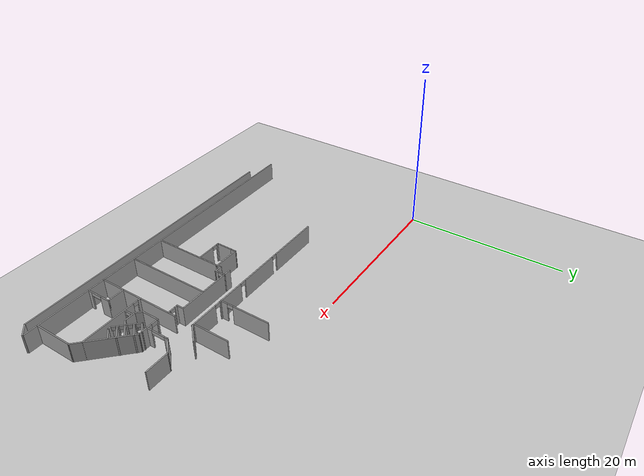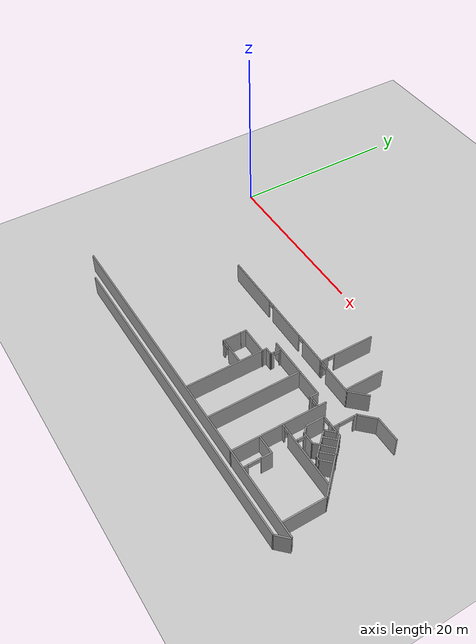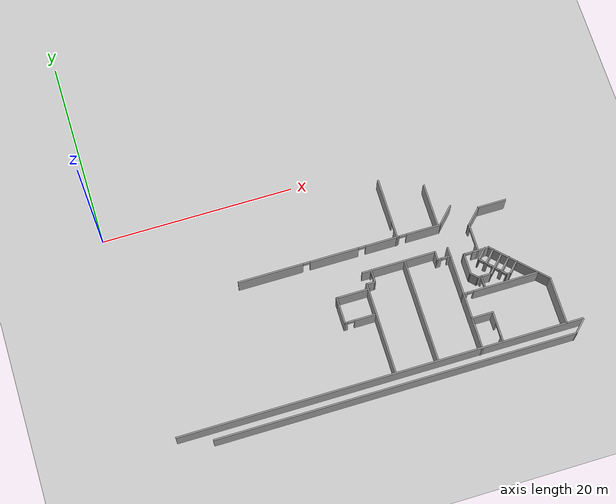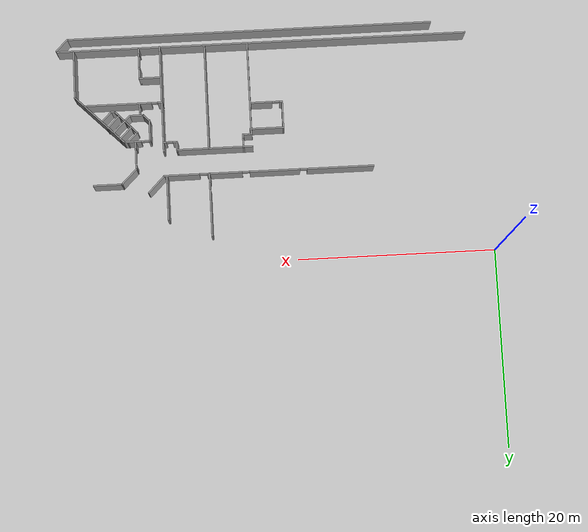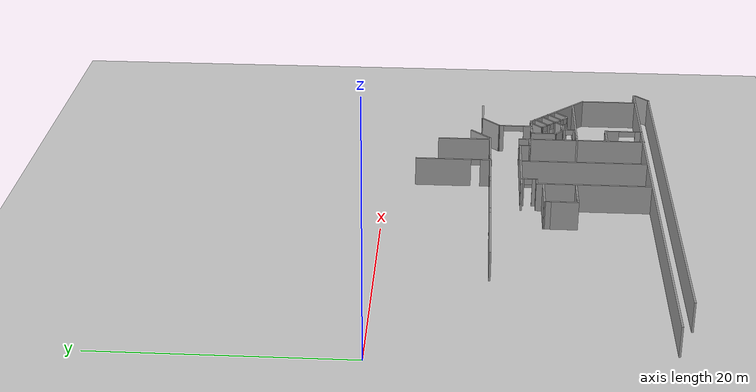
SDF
<sdf version="1.7">
 <world name="default">
  <model name="ground_plane">
   <static>1</static>
   <link name="link">
    <collision name="collision">
     <geometry><plane><normal>0 0 1</normal><size>100 100</size></plane></geometry>
     <surface>
      <contact><collide_bitmask>65535</collide_bitmask></contact>
      <friction><ode><mu>100</mu><mu2>50</mu2></ode></friction>
     </surface>
    </collision>
    <visual name="visual">
     <cast_shadows>0</cast_shadows>
     <geometry><plane><normal>0 0 1</normal><size>100 100</size></plane></geometry>
     <material>
      <script><uri>file://media/materials/scripts/gazebo.material</uri><name>Gazebo/Grey</name></script>
     </material>
    </visual>
   </link>
  </model>
  <model name="anglo_3_andar_metade">
   <pose>-4.28797 -1.08288 0 0 -0 0</pose>
   <link name="Wall_385">
    <collision name="Wall_385_Collision">
     <geometry><box><size>37.28 0.15 2.5</size></box></geometry>
     <pose>0 0 1.25 0 -0 0</pose>
    </collision>
    <visual name="Wall_385_Visual">
     <pose>0 0 1.25 0 -0 0</pose>
     <geometry><box><size>37.28 0.15 2.5</size></box></geometry>
     <material>
      <script><uri>file://media/materials/scripts/gazebo.material</uri><name>Gazebo/Grey</name></script>
      <ambient>1 1 1 1</ambient>
     </material>
     <meta><layer>0</layer></meta>
    </visual>
    <pose>28.1349 -22.4413 0 0 -0 0.000539</pose>
   </link>
   <link name="Wall_387">
    <collision name="Wall_387_Collision">
     <geometry><box><size>1.75 0.15 2.5</size></box></geometry>
     <pose>0 0 1.25 0 -0 0</pose>
    </collision>
    <visual name="Wall_387_Visual">
     <pose>0 0 1.25 0 -0 0</pose>
     <geometry><box><size>1.75 0.15 2.5</size></box></geometry>
     <material>
      <script><uri>file://media/materials/scripts/gazebo.material</uri><name>Gazebo/Grey</name></script>
      <ambient>1 1 1 1</ambient>
     </material>
     <meta><layer>0</layer></meta>
    </visual>
    <pose>47.2655 -21.8756 0 0 -0 0.785398</pose>
   </link>
   <link name="Wall_391">
    <collision name="Wall_391_Collision">
     <geometry><box><size>41.75 0.15 2.5</size></box></geometry>
     <pose>0 0 1.25 0 -0 0</pose>
    </collision>
    <visual name="Wall_391_Visual">
     <pose>0 0 1.25 0 -0 0</pose>
     <geometry><box><size>41.75 0.15 2.5</size></box></geometry>
     <material>
      <script><uri>file://media/materials/scripts/gazebo.material</uri><name>Gazebo/Grey</name></script>
      <ambient>1 1 1 1</ambient>
     </material>
     <meta><layer>0</layer></meta>
    </visual>
    <pose>26.9577 -21.1863 0 0 -0 0</pose>
   </link>
   <link name="Wall_393">
    <collision name="Wall_393_Collision">
     <geometry><box><size>5 0.15 2.5</size></box></geometry>
     <pose>0 0 1.25 0 -0 0</pose>
    </collision>
    <visual name="Wall_393_Visual">
     <pose>0 0 1.25 0 -0 0</pose>
     <geometry><box><size>5 0.15 2.5</size></box></geometry>
     <material>
      <script><uri>file://media/materials/scripts/gazebo.material</uri><name>Gazebo/Grey</name></script>
      <ambient>1 1 1 1</ambient>
     </material>
     <meta><layer>0</layer></meta>
    </visual>
    <pose>46.1077 -18.7513 0 0 -0 -1.5708</pose>
   </link>
   <link name="Wall_412">
    <collision name="Wall_412_Collision">
     <geometry><box><size>0.75 0.15 2.5</size></box></geometry>
     <pose>0 0 1.25 0 -0 0</pose>
    </collision>
    <visual name="Wall_412_Visual">
     <pose>0 0 1.25 0 -0 0</pose>
     <geometry><box><size>0.75 0.15 2.5</size></box></geometry>
     <material>
      <script><uri>file://media/materials/scripts/gazebo.material</uri><name>Gazebo/Grey</name></script>
      <ambient>1 1 1 1</ambient>
     </material>
     <meta><layer>0</layer></meta>
    </visual>
    <pose>25.1227 -12.4963 0 0 -0 1.58746</pose>
   </link>
   <link name="Wall_413">
    <collision name="Wall_413_Collision">
     <geometry><box><size>3.5 0.15 2.5</size></box></geometry>
     <pose>0 0 1.25 0 -0 0</pose>
    </collision>
    <visual name="Wall_413_Visual">
     <pose>0 0 1.25 0 -0 0</pose>
     <geometry><box><size>3.5 0.15 2.5</size></box></geometry>
     <material>
      <script><uri>file://media/materials/scripts/gazebo.material</uri><name>Gazebo/Grey</name></script>
      <ambient>1 1 1 1</ambient>
     </material>
     <meta><layer>0</layer></meta>
    </visual>
    <pose>26.7927 -12.1963 0 0 -0 0</pose>
   </link>
   <link name="Wall_415">
    <collision name="Wall_415_Collision">
     <geometry><box><size>2.25 0.15 2.5</size></box></geometry>
     <pose>0 0 1.25 0 -0 0</pose>
    </collision>
    <visual name="Wall_415_Visual">
     <pose>0 0 1.25 0 -0 0</pose>
     <geometry><box><size>2.25 0.15 2.5</size></box></geometry>
     <material>
      <script><uri>file://media/materials/scripts/gazebo.material</uri><name>Gazebo/Grey</name></script>
      <ambient>1 1 1 1</ambient>
     </material>
     <meta><layer>0</layer></meta>
    </visual>
    <pose>25.1177 -13.8463 0 0 -0 -1.5708</pose>
   </link>
   <link name="Wall_416">
    <pose>26.6727 -14.8963 0 0 -0 0</pose>
    <visual name="Wall_416_Visual_0">
     <pose>-1.435 0 1.25 0 -0 0</pose>
     <geometry><box><size>0.37 0.15 2.5</size></box></geometry>
     <material>
      <script><uri>file://media/materials/scripts/gazebo.material</uri><name>Gazebo/Grey</name></script>
      <ambient>1 1 1 1</ambient>
     </material>
     <meta><layer>0</layer></meta>
    </visual>
    <collision name="Wall_416_Collision_0">
     <geometry><box><size>0.37 0.15 2.5</size></box></geometry>
     <pose>-1.435 0 1.25 0 -0 0</pose>
    </collision>
    <visual name="Wall_416_Visual_1">
     <pose>0.54 0 1.25 0 -0 0</pose>
     <geometry><box><size>2.16 0.15 2.5</size></box></geometry>
     <material>
      <script><uri>file://media/materials/scripts/gazebo.material</uri><name>Gazebo/Grey</name></script>
      <ambient>1 1 1 1</ambient>
     </material>
     <meta><layer>0</layer></meta>
    </visual>
    <collision name="Wall_416_Collision_1">
     <geometry><box><size>2.16 0.15 2.5</size></box></geometry>
     <pose>0.54 0 1.25 0 -0 0</pose>
    </collision>
    <visual name="Wall_416_Visual_2">
     <pose>-0.895 0 2.25 0 -0 0</pose>
     <geometry><box><size>0.71 0.15 0.5</size></box></geometry>
     <material>
      <script><uri>file://media/materials/scripts/gazebo.material</uri><name>Gazebo/Grey</name></script>
      <ambient>1 1 1 1</ambient>
     </material>
     <meta><layer>0</layer></meta>
    </visual>
    <collision name="Wall_416_Collision_2">
     <geometry><box><size>0.71 0.15 0.5</size></box></geometry>
     <pose>-0.895 0 2.25 0 -0 0</pose>
    </collision>
   </link>
   <link name="Wall_418">
    <collision name="Wall_418_Collision">
     <geometry><box><size>9.53 0.15 2.5</size></box></geometry>
     <pose>0 0 1.25 0 -0 0</pose>
    </collision>
    <visual name="Wall_418_Visual">
     <pose>0 0 1.25 0 -0 0</pose>
     <geometry><box><size>9.53 0.15 2.5</size></box></geometry>
     <material>
      <script><uri>file://media/materials/scripts/gazebo.material</uri><name>Gazebo/Grey</name></script>
      <ambient>1 1 1 1</ambient>
     </material>
     <meta><layer>0</layer></meta>
    </visual>
    <pose>28.3977 -16.3663 0 0 -0 -1.5708</pose>
   </link>
   <link name="Wall_420">
    <collision name="Wall_420_Collision">
     <geometry><box><size>1 0.15 2.5</size></box></geometry>
     <pose>0 0 1.25 0 -0 0</pose>
    </collision>
    <visual name="Wall_420_Visual">
     <pose>0 0 1.25 0 -0 0</pose>
     <geometry><box><size>1 0.15 2.5</size></box></geometry>
     <material>
      <script><uri>file://media/materials/scripts/gazebo.material</uri><name>Gazebo/Grey</name></script>
      <ambient>1 1 1 1</ambient>
     </material>
     <meta><layer>0</layer></meta>
    </visual>
    <pose>28.8327 -11.6663 0 0 -0 0</pose>
   </link>
   <link name="Wall_421">
    <pose>29.2527 -11.0313 0 0 -0 1.57867</pose>
    <visual name="Wall_421_Visual_0">
     <pose>-0.48019 0 1.25 0 -0 0</pose>
     <geometry><box><size>0.459659 0.15 2.5</size></box></geometry>
     <material>
      <script><uri>file://media/materials/scripts/gazebo.material</uri><name>Gazebo/Grey</name></script>
      <ambient>1 1 1 1</ambient>
     </material>
     <meta><layer>0</layer></meta>
    </visual>
    <collision name="Wall_421_Collision_0">
     <geometry><box><size>0.459659 0.15 2.5</size></box></geometry>
     <pose>-0.48019 0 1.25 0 -0 0</pose>
    </collision>
    <visual name="Wall_421_Visual_1">
     <pose>0.555148 0 1.25 0 -0 0</pose>
     <geometry><box><size>0.309743 0.15 2.5</size></box></geometry>
     <material>
      <script><uri>file://media/materials/scripts/gazebo.material</uri><name>Gazebo/Grey</name></script>
      <ambient>1 1 1 1</ambient>
     </material>
     <meta><layer>0</layer></meta>
    </visual>
    <collision name="Wall_421_Collision_1">
     <geometry><box><size>0.309743 0.15 2.5</size></box></geometry>
     <pose>0.555148 0 1.25 0 -0 0</pose>
    </collision>
    <visual name="Wall_421_Visual_2">
     <pose>0.074958 0 2.25 0 -0 0</pose>
     <geometry><box><size>0.650638 0.15 0.5</size></box></geometry>
     <material>
      <script><uri>file://media/materials/scripts/gazebo.material</uri><name>Gazebo/Grey</name></script>
      <ambient>1 1 1 1</ambient>
     </material>
     <meta><layer>0</layer></meta>
    </visual>
    <collision name="Wall_421_Collision_2">
     <geometry><box><size>0.650638 0.15 0.5</size></box></geometry>
     <pose>0.074958 0 2.25 0 -0 0</pose>
    </collision>
   </link>
   <link name="Wall_423">
    <collision name="Wall_423_Collision">
     <geometry><box><size>7.75 0.15 2.5</size></box></geometry>
     <pose>0 0 1.25 0 -0 0</pose>
    </collision>
    <visual name="Wall_423_Visual">
     <pose>0 0 1.25 0 -0 0</pose>
     <geometry><box><size>7.75 0.15 2.5</size></box></geometry>
     <material>
      <script><uri>file://media/materials/scripts/gazebo.material</uri><name>Gazebo/Grey</name></script>
      <ambient>1 1 1 1</ambient>
     </material>
     <meta><layer>0</layer></meta>
    </visual>
    <pose>32.1677 -10.4063 0 0 -0 0</pose>
   </link>
   <link name="Wall_425">
    <collision name="Wall_425_Collision">
     <geometry><box><size>10.75 0.15 2.5</size></box></geometry>
     <pose>0 0 1.25 0 -0 0</pose>
    </collision>
    <visual name="Wall_425_Visual">
     <pose>0 0 1.25 0 -0 0</pose>
     <geometry><box><size>10.75 0.15 2.5</size></box></geometry>
     <material>
      <script><uri>file://media/materials/scripts/gazebo.material</uri><name>Gazebo/Grey</name></script>
      <ambient>1 1 1 1</ambient>
     </material>
     <meta><layer>0</layer></meta>
    </visual>
    <pose>32.7677 -15.7363 0 0 -0 -1.5708</pose>
   </link>
   <link name="Wall_427">
    <collision name="Wall_427_Collision">
     <geometry><box><size>1 0.15 2.5</size></box></geometry>
     <pose>0 0 1.25 0 -0 0</pose>
    </collision>
    <visual name="Wall_427_Visual">
     <pose>0 0 1.25 0 -0 0</pose>
     <geometry><box><size>1 0.15 2.5</size></box></geometry>
     <material>
      <script><uri>file://media/materials/scripts/gazebo.material</uri><name>Gazebo/Grey</name></script>
      <ambient>1 1 1 1</ambient>
     </material>
     <meta><layer>0</layer></meta>
    </visual>
    <pose>35.9677 -10.8313 0 0 -0 -1.5708</pose>
   </link>
   <link name="Wall_428">
    <pose>36.6427 -11.2563 0 0 -0 0</pose>
    <visual name="Wall_428_Visual_0">
     <pose>-0.514999 0 1.25 0 -0 0</pose>
     <geometry><box><size>0.470002 0.15 2.5</size></box></geometry>
     <material>
      <script><uri>file://media/materials/scripts/gazebo.material</uri><name>Gazebo/Grey</name></script>
      <ambient>1 1 1 1</ambient>
     </material>
     <meta><layer>0</layer></meta>
    </visual>
    <collision name="Wall_428_Collision_0">
     <geometry><box><size>0.470002 0.15 2.5</size></box></geometry>
     <pose>-0.514999 0 1.25 0 -0 0</pose>
    </collision>
    <visual name="Wall_428_Visual_1">
     <pose>0.560001 0 1.25 0 -0 0</pose>
     <geometry><box><size>0.379998 0.15 2.5</size></box></geometry>
     <material>
      <script><uri>file://media/materials/scripts/gazebo.material</uri><name>Gazebo/Grey</name></script>
      <ambient>1 1 1 1</ambient>
     </material>
     <meta><layer>0</layer></meta>
    </visual>
    <collision name="Wall_428_Collision_1">
     <geometry><box><size>0.379998 0.15 2.5</size></box></geometry>
     <pose>0.560001 0 1.25 0 -0 0</pose>
    </collision>
    <visual name="Wall_428_Visual_2">
     <pose>0.045002 0 2.25 0 -0 0</pose>
     <geometry><box><size>0.65 0.15 0.5</size></box></geometry>
     <material>
      <script><uri>file://media/materials/scripts/gazebo.material</uri><name>Gazebo/Grey</name></script>
      <ambient>1 1 1 1</ambient>
     </material>
     <meta><layer>0</layer></meta>
    </visual>
    <collision name="Wall_428_Collision_2">
     <geometry><box><size>0.65 0.15 0.5</size></box></geometry>
     <pose>0.045002 0 2.25 0 -0 0</pose>
    </collision>
   </link>
   <link name="Wall_430">
    <collision name="Wall_430_Collision">
     <geometry><box><size>11 0.15 2.5</size></box></geometry>
     <pose>0 0 1.25 0 -0 0</pose>
    </collision>
    <visual name="Wall_430_Visual">
     <pose>0 0 1.25 0 -0 0</pose>
     <geometry><box><size>11 0.15 2.5</size></box></geometry>
     <material>
      <script><uri>file://media/materials/scripts/gazebo.material</uri><name>Gazebo/Grey</name></script>
      <ambient>1 1 1 1</ambient>
     </material>
     <meta><layer>0</layer></meta>
    </visual>
    <pose>37.3177 -15.8113 0 0 -0 -1.5708</pose>
   </link>
   <link name="Wall_432">
    <pose>41.2327 -15.4063 0 0 -0 0</pose>
    <visual name="Wall_432_Visual_0">
     <pose>-3.75 0 1.25 0 -0 0</pose>
     <geometry><box><size>0.5 0.15 2.5</size></box></geometry>
     <material>
      <script><uri>file://media/materials/scripts/gazebo.material</uri><name>Gazebo/Grey</name></script>
      <ambient>1 1 1 1</ambient>
     </material>
     <meta><layer>0</layer></meta>
    </visual>
    <collision name="Wall_432_Collision_0">
     <geometry><box><size>0.5 0.15 2.5</size></box></geometry>
     <pose>-3.75 0 1.25 0 -0 0</pose>
    </collision>
    <visual name="Wall_432_Visual_1">
     <pose>0.57 0 1.25 0 -0 0</pose>
     <geometry><box><size>6.86 0.15 2.5</size></box></geometry>
     <material>
      <script><uri>file://media/materials/scripts/gazebo.material</uri><name>Gazebo/Grey</name></script>
      <ambient>1 1 1 1</ambient>
     </material>
     <meta><layer>0</layer></meta>
    </visual>
    <collision name="Wall_432_Collision_1">
     <geometry><box><size>6.86 0.15 2.5</size></box></geometry>
     <pose>0.57 0 1.25 0 -0 0</pose>
    </collision>
    <visual name="Wall_432_Visual_2">
     <pose>-3.18 0 2.25 0 -0 0</pose>
     <geometry><box><size>0.64 0.15 0.5</size></box></geometry>
     <material>
      <script><uri>file://media/materials/scripts/gazebo.material</uri><name>Gazebo/Grey</name></script>
      <ambient>1 1 1 1</ambient>
     </material>
     <meta><layer>0</layer></meta>
    </visual>
    <collision name="Wall_432_Collision_2">
     <geometry><box><size>0.64 0.15 0.5</size></box></geometry>
     <pose>-3.18 0 2.25 0 -0 0</pose>
    </collision>
   </link>
   <link name="Wall_434">
    <collision name="Wall_434_Collision">
     <geometry><box><size>2.25 0.15 2.5</size></box></geometry>
     <pose>0 0 1.25 0 -0 0</pose>
    </collision>
    <visual name="Wall_434_Visual">
     <pose>0 0 1.25 0 -0 0</pose>
     <geometry><box><size>2.25 0.15 2.5</size></box></geometry>
     <material>
      <script><uri>file://media/materials/scripts/gazebo.material</uri><name>Gazebo/Grey</name></script>
      <ambient>1 1 1 1</ambient>
     </material>
     <meta><layer>0</layer></meta>
    </visual>
    <pose>38.4277 -18.0263 0 0 -0 0</pose>
   </link>
   <link name="Wall_435">
    <pose>39.4777 -19.5763 0 0 -0 -1.5708</pose>
    <visual name="Wall_435_Visual_0">
     <pose>-0.9925 0 1.25 0 -0 0</pose>
     <geometry><box><size>1.265 0.15 2.5</size></box></geometry>
     <material>
      <script><uri>file://media/materials/scripts/gazebo.material</uri><name>Gazebo/Grey</name></script>
      <ambient>1 1 1 1</ambient>
     </material>
     <meta><layer>0</layer></meta>
    </visual>
    <collision name="Wall_435_Collision_0">
     <geometry><box><size>1.265 0.15 2.5</size></box></geometry>
     <pose>-0.9925 0 1.25 0 -0 0</pose>
    </collision>
    <visual name="Wall_435_Visual_1">
     <pose>1.3375 0 1.25 0 -0 0</pose>
     <geometry><box><size>0.575001 0.15 2.5</size></box></geometry>
     <material>
      <script><uri>file://media/materials/scripts/gazebo.material</uri><name>Gazebo/Grey</name></script>
      <ambient>1 1 1 1</ambient>
     </material>
     <meta><layer>0</layer></meta>
    </visual>
    <collision name="Wall_435_Collision_1">
     <geometry><box><size>0.575001 0.15 2.5</size></box></geometry>
     <pose>1.3375 0 1.25 0 -0 0</pose>
    </collision>
    <visual name="Wall_435_Visual_2">
     <pose>0.344999 0 2.25 0 -0 0</pose>
     <geometry><box><size>1.41 0.15 0.5</size></box></geometry>
     <material>
      <script><uri>file://media/materials/scripts/gazebo.material</uri><name>Gazebo/Grey</name></script>
      <ambient>1 1 1 1</ambient>
     </material>
     <meta><layer>0</layer></meta>
    </visual>
    <collision name="Wall_435_Collision_2">
     <geometry><box><size>1.41 0.15 0.5</size></box></geometry>
     <pose>0.344999 0 2.25 0 -0 0</pose>
    </collision>
   </link>
   <link name="Wall_437">
    <collision name="Wall_437_Collision">
     <geometry><box><size>7 0.15 2.5</size></box></geometry>
     <pose>0 0 1.25 0 -0 0</pose>
    </collision>
    <visual name="Wall_437_Visual">
     <pose>0 0 1.25 0 -0 0</pose>
     <geometry><box><size>7 0.15 2.5</size></box></geometry>
     <material>
      <script><uri>file://media/materials/scripts/gazebo.material</uri><name>Gazebo/Grey</name></script>
      <ambient>1 1 1 1</ambient>
     </material>
     <meta><layer>0</layer></meta>
    </visual>
    <pose>43.6859 -13.9045 0 0 -0 2.35619</pose>
   </link>
   <link name="Wall_439">
    <pose>39.964 -11.4826 0 0 -0 3.14159</pose>
    <visual name="Wall_439_Visual_0">
     <pose>-0.48684 0 1.25 0 -0 0</pose>
     <geometry><box><size>1.77632 0.15 2.5</size></box></geometry>
     <material>
      <script><uri>file://media/materials/scripts/gazebo.material</uri><name>Gazebo/Grey</name></script>
      <ambient>1 1 1 1</ambient>
     </material>
     <meta><layer>0</layer></meta>
    </visual>
    <collision name="Wall_439_Collision_0">
     <geometry><box><size>1.77632 0.15 2.5</size></box></geometry>
     <pose>-0.48684 0 1.25 0 -0 0</pose>
    </collision>
    <visual name="Wall_439_Visual_1">
     <pose>1.28816 0 1.25 0 -0 0</pose>
     <geometry><box><size>0.173681 0.15 2.5</size></box></geometry>
     <material>
      <script><uri>file://media/materials/scripts/gazebo.material</uri><name>Gazebo/Grey</name></script>
      <ambient>1 1 1 1</ambient>
     </material>
     <meta><layer>0</layer></meta>
    </visual>
    <collision name="Wall_439_Collision_1">
     <geometry><box><size>0.173681 0.15 2.5</size></box></geometry>
     <pose>1.28816 0 1.25 0 -0 0</pose>
    </collision>
    <visual name="Wall_439_Visual_2">
     <pose>0.801319 0 2.25 0 -0 0</pose>
     <geometry><box><size>0.8 0.15 0.5</size></box></geometry>
     <material>
      <script><uri>file://media/materials/scripts/gazebo.material</uri><name>Gazebo/Grey</name></script>
      <ambient>1 1 1 1</ambient>
     </material>
     <meta><layer>0</layer></meta>
    </visual>
    <collision name="Wall_439_Collision_2">
     <geometry><box><size>0.8 0.15 0.5</size></box></geometry>
     <pose>0.801319 0 2.25 0 -0 0</pose>
    </collision>
   </link>
   <link name="Wall_441">
    <collision name="Wall_441_Collision">
     <geometry><box><size>2.25 0.15 2.5</size></box></geometry>
     <pose>0 0 1.25 0 -0 0</pose>
    </collision>
    <visual name="Wall_441_Visual">
     <pose>0 0 1.25 0 -0 0</pose>
     <geometry><box><size>2.25 0.15 2.5</size></box></geometry>
     <material>
      <script><uri>file://media/materials/scripts/gazebo.material</uri><name>Gazebo/Grey</name></script>
      <ambient>1 1 1 1</ambient>
     </material>
     <meta><layer>0</layer></meta>
    </visual>
    <pose>38.664 -12.5326 0 0 -0 -1.5708</pose>
   </link>
   <link name="Wall_442">
    <collision name="Wall_442_Collision">
     <geometry><box><size>1 0.15 2.5</size></box></geometry>
     <pose>0 0 1.25 0 -0 0</pose>
    </collision>
    <visual name="Wall_442_Visual">
     <pose>0 0 1.25 0 -0 0</pose>
     <geometry><box><size>1 0.15 2.5</size></box></geometry>
     <material>
      <script><uri>file://media/materials/scripts/gazebo.material</uri><name>Gazebo/Grey</name></script>
      <ambient>1 1 1 1</ambient>
     </material>
     <meta><layer>0</layer></meta>
    </visual>
    <pose>38.9645 -13.8832 0 0 -0 -0.785398</pose>
   </link>
   <link name="Wall_443">
    <collision name="Wall_443_Collision">
     <geometry><box><size>1.5 0.15 2.5</size></box></geometry>
     <pose>0 0 1.25 0 -0 0</pose>
    </collision>
    <visual name="Wall_443_Visual">
     <pose>0 0 1.25 0 -0 0</pose>
     <geometry><box><size>1.5 0.15 2.5</size></box></geometry>
     <material>
      <script><uri>file://media/materials/scripts/gazebo.material</uri><name>Gazebo/Grey</name></script>
      <ambient>1 1 1 1</ambient>
     </material>
     <meta><layer>0</layer></meta>
    </visual>
    <pose>39.9401 -14.1837 0 0 -0 0</pose>
   </link>
   <link name="Wall_444">
    <collision name="Wall_444_Collision">
     <geometry><box><size>2.5 0.15 2.5</size></box></geometry>
     <pose>0 0 1.25 0 -0 0</pose>
    </collision>
    <visual name="Wall_444_Visual">
     <pose>0 0 1.25 0 -0 0</pose>
     <geometry><box><size>2.5 0.15 2.5</size></box></geometry>
     <material>
      <script><uri>file://media/materials/scripts/gazebo.material</uri><name>Gazebo/Grey</name></script>
      <ambient>1 1 1 1</ambient>
     </material>
     <meta><layer>0</layer></meta>
    </visual>
    <pose>41.4459 -13.3528 0 0 -0 0.785398</pose>
   </link>
   <link name="Wall_447">
    <pose>39.5777 -14.7463 0 0 -0 -1.5708</pose>
    <visual name="Wall_447_Visual_0">
     <pose>-0.445 0 1.25 0 -0 0</pose>
     <geometry><box><size>0.36 0.15 2.5</size></box></geometry>
     <material>
      <script><uri>file://media/materials/scripts/gazebo.material</uri><name>Gazebo/Grey</name></script>
      <ambient>1 1 1 1</ambient>
     </material>
     <meta><layer>0</layer></meta>
    </visual>
    <collision name="Wall_447_Collision_0">
     <geometry><box><size>0.36 0.15 2.5</size></box></geometry>
     <pose>-0.445 0 1.25 0 -0 0</pose>
    </collision>
    <visual name="Wall_447_Visual_1">
     <pose>0.52 0 1.25 0 -0 0</pose>
     <geometry><box><size>0.21 0.15 2.5</size></box></geometry>
     <material>
      <script><uri>file://media/materials/scripts/gazebo.material</uri><name>Gazebo/Grey</name></script>
      <ambient>1 1 1 1</ambient>
     </material>
     <meta><layer>0</layer></meta>
    </visual>
    <collision name="Wall_447_Collision_1">
     <geometry><box><size>0.21 0.15 2.5</size></box></geometry>
     <pose>0.52 0 1.25 0 -0 0</pose>
    </collision>
    <visual name="Wall_447_Visual_2">
     <pose>0.075 0 2.25 0 -0 0</pose>
     <geometry><box><size>0.68 0.15 0.5</size></box></geometry>
     <material>
      <script><uri>file://media/materials/scripts/gazebo.material</uri><name>Gazebo/Grey</name></script>
      <ambient>1 1 1 1</ambient>
     </material>
     <meta><layer>0</layer></meta>
    </visual>
    <collision name="Wall_447_Collision_2">
     <geometry><box><size>0.68 0.15 0.5</size></box></geometry>
     <pose>0.075 0 2.25 0 -0 0</pose>
    </collision>
   </link>
   <link name="Wall_449">
    <collision name="Wall_449_Collision">
     <geometry><box><size>1.5 0.15 2.5</size></box></geometry>
     <pose>0 0 1.25 0 -0 0</pose>
    </collision>
    <visual name="Wall_449_Visual">
     <pose>0 0 1.25 0 -0 0</pose>
     <geometry><box><size>1.5 0.15 2.5</size></box></geometry>
     <material>
      <script><uri>file://media/materials/scripts/gazebo.material</uri><name>Gazebo/Grey</name></script>
      <ambient>1 1 1 1</ambient>
     </material>
     <meta><layer>0</layer></meta>
    </visual>
    <pose>40.4104 -11.9236 0 0 -0 -2.35619</pose>
   </link>
   <link name="Wall_450">
    <pose>41.0282 -13.5372 0 0 -0 -0.803885</pose>
    <visual name="Wall_450_Visual_0">
     <pose>-1.57581 0 1.25 0 -0 0</pose>
     <geometry><box><size>0.154535 0.15 2.5</size></box></geometry>
     <material>
      <script><uri>file://media/materials/scripts/gazebo.material</uri><name>Gazebo/Grey</name></script>
      <ambient>1 1 1 1</ambient>
     </material>
     <meta><layer>0</layer></meta>
    </visual>
    <collision name="Wall_450_Collision_0">
     <geometry><box><size>0.154535 0.15 2.5</size></box></geometry>
     <pose>-1.57581 0 1.25 0 -0 0</pose>
    </collision>
    <visual name="Wall_450_Visual_1">
     <pose>-0.77383 0 1.25 0 -0 0</pose>
     <geometry><box><size>0.356538 0.15 2.5</size></box></geometry>
     <material>
      <script><uri>file://media/materials/scripts/gazebo.material</uri><name>Gazebo/Grey</name></script>
      <ambient>1 1 1 1</ambient>
     </material>
     <meta><layer>0</layer></meta>
    </visual>
    <collision name="Wall_450_Collision_1">
     <geometry><box><size>0.356538 0.15 2.5</size></box></geometry>
     <pose>-0.77383 0 1.25 0 -0 0</pose>
    </collision>
    <visual name="Wall_450_Visual_2">
     <pose>0.072394 0 1.25 0 -0 0</pose>
     <geometry><box><size>0.356153 0.15 2.5</size></box></geometry>
     <material>
      <script><uri>file://media/materials/scripts/gazebo.material</uri><name>Gazebo/Grey</name></script>
      <ambient>1 1 1 1</ambient>
     </material>
     <meta><layer>0</layer></meta>
    </visual>
    <collision name="Wall_450_Collision_2">
     <geometry><box><size>0.356153 0.15 2.5</size></box></geometry>
     <pose>0.072394 0 1.25 0 -0 0</pose>
    </collision>
    <visual name="Wall_450_Visual_3">
     <pose>0.930639 0 1.25 0 -0 0</pose>
     <geometry><box><size>0.352297 0.15 2.5</size></box></geometry>
     <material>
      <script><uri>file://media/materials/scripts/gazebo.material</uri><name>Gazebo/Grey</name></script>
      <ambient>1 1 1 1</ambient>
     </material>
     <meta><layer>0</layer></meta>
    </visual>
    <collision name="Wall_450_Collision_3">
     <geometry><box><size>0.352297 0.15 2.5</size></box></geometry>
     <pose>0.930639 0 1.25 0 -0 0</pose>
    </collision>
    <visual name="Wall_450_Visual_4">
     <pose>1.61073 0 1.25 0 -0 0</pose>
     <geometry><box><size>0.084699 0.15 2.5</size></box></geometry>
     <material>
      <script><uri>file://media/materials/scripts/gazebo.material</uri><name>Gazebo/Grey</name></script>
      <ambient>1 1 1 1</ambient>
     </material>
     <meta><layer>0</layer></meta>
    </visual>
    <collision name="Wall_450_Collision_4">
     <geometry><box><size>0.084699 0.15 2.5</size></box></geometry>
     <pose>1.61073 0 1.25 0 -0 0</pose>
    </collision>
    <visual name="Wall_450_Visual_5">
     <pose>-1.22532 0 2.25 0 -0 0</pose>
     <geometry><box><size>0.546447 0.15 0.5</size></box></geometry>
     <material>
      <script><uri>file://media/materials/scripts/gazebo.material</uri><name>Gazebo/Grey</name></script>
      <ambient>1 1 1 1</ambient>
     </material>
     <meta><layer>0</layer></meta>
    </visual>
    <collision name="Wall_450_Collision_5">
     <geometry><box><size>0.546447 0.15 0.5</size></box></geometry>
     <pose>-1.22532 0 2.25 0 -0 0</pose>
    </collision>
    <visual name="Wall_450_Visual_6">
     <pose>-0.350622 0 2.25 0 -0 0</pose>
     <geometry><box><size>0.489878 0.15 0.5</size></box></geometry>
     <material>
      <script><uri>file://media/materials/scripts/gazebo.material</uri><name>Gazebo/Grey</name></script>
      <ambient>1 1 1 1</ambient>
     </material>
     <meta><layer>0</layer></meta>
    </visual>
    <collision name="Wall_450_Collision_6">
     <geometry><box><size>0.489878 0.15 0.5</size></box></geometry>
     <pose>-0.350622 0 2.25 0 -0 0</pose>
    </collision>
    <visual name="Wall_450_Visual_7">
     <pose>0.50248 0 2.25 0 -0 0</pose>
     <geometry><box><size>0.50402 0.15 0.5</size></box></geometry>
     <material>
      <script><uri>file://media/materials/scripts/gazebo.material</uri><name>Gazebo/Grey</name></script>
      <ambient>1 1 1 1</ambient>
     </material>
     <meta><layer>0</layer></meta>
    </visual>
    <collision name="Wall_450_Collision_7">
     <geometry><box><size>0.50402 0.15 0.5</size></box></geometry>
     <pose>0.50248 0 2.25 0 -0 0</pose>
    </collision>
    <visual name="Wall_450_Visual_8">
     <pose>1.33758 0 2.25 0 -0 0</pose>
     <geometry><box><size>0.461594 0.15 0.5</size></box></geometry>
     <material>
      <script><uri>file://media/materials/scripts/gazebo.material</uri><name>Gazebo/Grey</name></script>
      <ambient>1 1 1 1</ambient>
     </material>
     <meta><layer>0</layer></meta>
    </visual>
    <collision name="Wall_450_Collision_8">
     <geometry><box><size>0.461594 0.15 0.5</size></box></geometry>
     <pose>1.33758 0 2.25 0 -0 0</pose>
    </collision>
   </link>
   <link name="Wall_451">
    <collision name="Wall_451_Collision">
     <geometry><box><size>0.5 0.15 2.5</size></box></geometry>
     <pose>0 0 1.25 0 -0 0</pose>
    </collision>
    <visual name="Wall_451_Visual">
     <pose>0 0 1.25 0 -0 0</pose>
     <geometry><box><size>0.5 0.15 2.5</size></box></geometry>
     <material>
      <script><uri>file://media/materials/scripts/gazebo.material</uri><name>Gazebo/Grey</name></script>
      <ambient>1 1 1 1</ambient>
     </material>
     <meta><layer>0</layer></meta>
    </visual>
    <pose>42.2982 -14.6735 0 0 -0 0</pose>
   </link>
   <link name="Wall_452">
    <collision name="Wall_452_Collision">
     <geometry><box><size>1.47172 0.15 2.5</size></box></geometry>
     <pose>0 0 1.25 0 -0 0</pose>
    </collision>
    <visual name="Wall_452_Visual">
     <pose>0 0 1.25 0 -0 0</pose>
     <geometry><box><size>1.47172 0.15 2.5</size></box></geometry>
     <material>
      <script><uri>file://media/materials/scripts/gazebo.material</uri><name>Gazebo/Grey</name></script>
      <ambient>1 1 1 1</ambient>
     </material>
     <meta><layer>0</layer></meta>
    </visual>
    <pose>42.9505 -14.1962 0 0 -0 0.785398</pose>
   </link>
   <link name="Wall_454">
    <collision name="Wall_454_Collision">
     <geometry><box><size>1.75 0.15 2.5</size></box></geometry>
     <pose>0 0 1.25 0 -0 0</pose>
    </collision>
    <visual name="Wall_454_Visual">
     <pose>0 0 1.25 0 -0 0</pose>
     <geometry><box><size>1.75 0.15 2.5</size></box></geometry>
     <material>
      <script><uri>file://media/materials/scripts/gazebo.material</uri><name>Gazebo/Grey</name></script>
      <ambient>1 1 1 1</ambient>
     </material>
     <meta><layer>0</layer></meta>
    </visual>
    <pose>42.3234 -13.6006 0 0 -0 0.785398</pose>
   </link>
   <link name="Wall_456">
    <collision name="Wall_456_Collision">
     <geometry><box><size>1.75 0.15 2.5</size></box></geometry>
     <pose>0 0 1.25 0 -0 0</pose>
    </collision>
    <visual name="Wall_456_Visual">
     <pose>0 0 1.25 0 -0 0</pose>
     <geometry><box><size>1.75 0.15 2.5</size></box></geometry>
     <material>
      <script><uri>file://media/materials/scripts/gazebo.material</uri><name>Gazebo/Grey</name></script>
      <ambient>1 1 1 1</ambient>
     </material>
     <meta><layer>0</layer></meta>
    </visual>
    <pose>41.0834 -12.4006 0 0 -0 0.785398</pose>
   </link>
   <link name="Wall_458">
    <pose>40.1477 -10.0613 0 0 -0 1.5708</pose>
    <visual name="Wall_458_Visual_0">
     <pose>-1.1025 0 1.25 0 -0 0</pose>
     <geometry><box><size>0.795 0.15 2.5</size></box></geometry>
     <material>
      <script><uri>file://media/materials/scripts/gazebo.material</uri><name>Gazebo/Grey</name></script>
      <ambient>1 1 1 1</ambient>
     </material>
     <meta><layer>0</layer></meta>
    </visual>
    <collision name="Wall_458_Collision_0">
     <geometry><box><size>0.795 0.15 2.5</size></box></geometry>
     <pose>-1.1025 0 1.25 0 -0 0</pose>
    </collision>
    <visual name="Wall_458_Visual_1">
     <pose>1.2725 0 1.25 0 -0 0</pose>
     <geometry><box><size>0.455 0.15 2.5</size></box></geometry>
     <material>
      <script><uri>file://media/materials/scripts/gazebo.material</uri><name>Gazebo/Grey</name></script>
      <ambient>1 1 1 1</ambient>
     </material>
     <meta><layer>0</layer></meta>
    </visual>
    <collision name="Wall_458_Collision_1">
     <geometry><box><size>0.455 0.15 2.5</size></box></geometry>
     <pose>1.2725 0 1.25 0 -0 0</pose>
    </collision>
    <visual name="Wall_458_Visual_2">
     <pose>0.17 0 2.25 0 -0 0</pose>
     <geometry><box><size>1.75 0.15 0.5</size></box></geometry>
     <material>
      <script><uri>file://media/materials/scripts/gazebo.material</uri><name>Gazebo/Grey</name></script>
      <ambient>1 1 1 1</ambient>
     </material>
     <meta><layer>0</layer></meta>
    </visual>
    <collision name="Wall_458_Collision_2">
     <geometry><box><size>1.75 0.15 0.5</size></box></geometry>
     <pose>0.17 0 2.25 0 -0 0</pose>
    </collision>
   </link>
   <link name="Wall_460">
    <collision name="Wall_460_Collision">
     <geometry><box><size>2.26419 0.15 2.5</size></box></geometry>
     <pose>0 0 1.25 0 -0 0</pose>
    </collision>
    <visual name="Wall_460_Visual">
     <pose>0 0 1.25 0 -0 0</pose>
     <geometry><box><size>2.26419 0.15 2.5</size></box></geometry>
     <material>
      <script><uri>file://media/materials/scripts/gazebo.material</uri><name>Gazebo/Grey</name></script>
      <ambient>1 1 1 1</ambient>
     </material>
     <meta><layer>0</layer></meta>
    </visual>
    <pose>40.9002 -7.89386 0 0 -0 0.778709</pose>
   </link>
   <link name="Wall_470">
    <collision name="Wall_470_Collision">
     <geometry><box><size>3 0.15 2.5</size></box></geometry>
     <pose>0 0 1.25 0 -0 0</pose>
    </collision>
    <visual name="Wall_470_Visual">
     <pose>0 0 1.25 0 -0 0</pose>
     <geometry><box><size>3 0.15 2.5</size></box></geometry>
     <material>
      <script><uri>file://media/materials/scripts/gazebo.material</uri><name>Gazebo/Grey</name></script>
      <ambient>1 1 1 1</ambient>
     </material>
     <meta><layer>0</layer></meta>
    </visual>
    <pose>43.0676 -7.1514 0 0 -0 0</pose>
   </link>
   <link name="Wall_512">
    <collision name="Wall_512_Collision">
     <geometry><box><size>2.42232 0.15 2.5</size></box></geometry>
     <pose>0 0 1.25 0 -0 0</pose>
    </collision>
    <visual name="Wall_512_Visual">
     <pose>0 0 1.25 0 -0 0</pose>
     <geometry><box><size>2.42232 0.15 2.5</size></box></geometry>
     <material>
      <script><uri>file://media/materials/scripts/gazebo.material</uri><name>Gazebo/Grey</name></script>
      <ambient>1 1 1 1</ambient>
     </material>
     <meta><layer>0</layer></meta>
    </visual>
    <pose>38.1636 -6.98547 0 0 -0 0.794734</pose>
   </link>
   <link name="Wall_527">
    <pose>32.8094 -4.66962 0 0 -0 -1.5708</pose>
    <visual name="Wall_527_Visual_0">
     <pose>-0.87915 0 1.25 0 -0 0</pose>
     <geometry><box><size>4.7417 0.15 2.5</size></box></geometry>
     <material>
      <script><uri>file://media/materials/scripts/gazebo.material</uri><name>Gazebo/Grey</name></script>
      <ambient>1 1 1 1</ambient>
     </material>
     <meta><layer>0</layer></meta>
    </visual>
    <collision name="Wall_527_Collision_0">
     <geometry><box><size>4.7417 0.15 2.5</size></box></geometry>
     <pose>-0.87915 0 1.25 0 -0 0</pose>
    </collision>
    <visual name="Wall_527_Visual_1">
     <pose>2.76085 0 1.25 0 -0 0</pose>
     <geometry><box><size>0.978299 0.15 2.5</size></box></geometry>
     <material>
      <script><uri>file://media/materials/scripts/gazebo.material</uri><name>Gazebo/Grey</name></script>
      <ambient>1 1 1 1</ambient>
     </material>
     <meta><layer>0</layer></meta>
    </visual>
    <collision name="Wall_527_Collision_1">
     <geometry><box><size>0.978299 0.15 2.5</size></box></geometry>
     <pose>2.76085 0 1.25 0 -0 0</pose>
    </collision>
    <visual name="Wall_527_Visual_2">
     <pose>1.8817 0 2.25 0 -0 0</pose>
     <geometry><box><size>0.78 0.15 0.5</size></box></geometry>
     <material>
      <script><uri>file://media/materials/scripts/gazebo.material</uri><name>Gazebo/Grey</name></script>
      <ambient>1 1 1 1</ambient>
     </material>
     <meta><layer>0</layer></meta>
    </visual>
    <collision name="Wall_527_Collision_2">
     <geometry><box><size>0.78 0.15 0.5</size></box></geometry>
     <pose>1.8817 0 2.25 0 -0 0</pose>
    </collision>
   </link>
   <link name="Wall_530">
    <collision name="Wall_530_Collision">
     <geometry><box><size>4.5 0.15 2.5</size></box></geometry>
     <pose>0 0 1.25 0 -0 0</pose>
    </collision>
    <visual name="Wall_530_Visual">
     <pose>0 0 1.25 0 -0 0</pose>
     <geometry><box><size>4.5 0.15 2.5</size></box></geometry>
     <material>
      <script><uri>file://media/materials/scripts/gazebo.material</uri><name>Gazebo/Grey</name></script>
      <ambient>1 1 1 1</ambient>
     </material>
     <meta><layer>0</layer></meta>
    </visual>
    <pose>37.1077 -5.50132 0 0 -0 -1.5708</pose>
   </link>
   <link name="Wall_583">
    <pose>26.8077 -7.80632 0 0 -0 0</pose>
    <visual name="Wall_583_Visual_0">
     <pose>-7.2425 0 1.25 0 -0 0</pose>
     <geometry><box><size>6.765 0.15 2.5</size></box></geometry>
     <material>
      <script><uri>file://media/materials/scripts/gazebo.material</uri><name>Gazebo/Grey</name></script>
      <ambient>1 1 1 1</ambient>
     </material>
     <meta><layer>0</layer></meta>
    </visual>
    <collision name="Wall_583_Collision_0">
     <geometry><box><size>6.765 0.15 2.5</size></box></geometry>
     <pose>-7.2425 0 1.25 0 -0 0</pose>
    </collision>
    <visual name="Wall_583_Visual_1">
     <pose>-0.6025 0 1.25 0 -0 0</pose>
     <geometry><box><size>5.075 0.15 2.5</size></box></geometry>
     <material>
      <script><uri>file://media/materials/scripts/gazebo.material</uri><name>Gazebo/Grey</name></script>
      <ambient>1 1 1 1</ambient>
     </material>
     <meta><layer>0</layer></meta>
    </visual>
    <collision name="Wall_583_Collision_1">
     <geometry><box><size>5.075 0.15 2.5</size></box></geometry>
     <pose>-0.6025 0 1.25 0 -0 0</pose>
    </collision>
    <visual name="Wall_583_Visual_2">
     <pose>4.4625 0 1.25 0 -0 0</pose>
     <geometry><box><size>3.555 0.15 2.5</size></box></geometry>
     <material>
      <script><uri>file://media/materials/scripts/gazebo.material</uri><name>Gazebo/Grey</name></script>
      <ambient>1 1 1 1</ambient>
     </material>
     <meta><layer>0</layer></meta>
    </visual>
    <collision name="Wall_583_Collision_2">
     <geometry><box><size>3.555 0.15 2.5</size></box></geometry>
     <pose>4.4625 0 1.25 0 -0 0</pose>
    </collision>
    <visual name="Wall_583_Visual_3">
     <pose>8.8125 0 1.25 0 -0 0</pose>
     <geometry><box><size>3.625 0.15 2.5</size></box></geometry>
     <material>
      <script><uri>file://media/materials/scripts/gazebo.material</uri><name>Gazebo/Grey</name></script>
      <ambient>1 1 1 1</ambient>
     </material>
     <meta><layer>0</layer></meta>
    </visual>
    <collision name="Wall_583_Collision_3">
     <geometry><box><size>3.625 0.15 2.5</size></box></geometry>
     <pose>8.8125 0 1.25 0 -0 0</pose>
    </collision>
    <visual name="Wall_583_Visual_4">
     <pose>-3.5 0 2.25 0 -0 0</pose>
     <geometry><box><size>0.72 0.15 0.5</size></box></geometry>
     <material>
      <script><uri>file://media/materials/scripts/gazebo.material</uri><name>Gazebo/Grey</name></script>
      <ambient>1 1 1 1</ambient>
     </material>
     <meta><layer>0</layer></meta>
    </visual>
    <collision name="Wall_583_Collision_4">
     <geometry><box><size>0.72 0.15 0.5</size></box></geometry>
     <pose>-3.5 0 2.25 0 -0 0</pose>
    </collision>
    <visual name="Wall_583_Visual_5">
     <pose>2.31 0 2.25 0 -0 0</pose>
     <geometry><box><size>0.75 0.15 0.5</size></box></geometry>
     <material>
      <script><uri>file://media/materials/scripts/gazebo.material</uri><name>Gazebo/Grey</name></script>
      <ambient>1 1 1 1</ambient>
     </material>
     <meta><layer>0</layer></meta>
    </visual>
    <collision name="Wall_583_Collision_5">
     <geometry><box><size>0.75 0.15 0.5</size></box></geometry>
     <pose>2.31 0 2.25 0 -0 0</pose>
    </collision>
    <visual name="Wall_583_Visual_6">
     <pose>6.62 0 2.25 0 -0 0</pose>
     <geometry><box><size>0.76 0.15 0.5</size></box></geometry>
     <material>
      <script><uri>file://media/materials/scripts/gazebo.material</uri><name>Gazebo/Grey</name></script>
      <ambient>1 1 1 1</ambient>
     </material>
     <meta><layer>0</layer></meta>
    </visual>
    <collision name="Wall_583_Collision_6">
     <geometry><box><size>0.76 0.15 0.5</size></box></geometry>
     <pose>6.62 0 2.25 0 -0 0</pose>
    </collision>
   </link>
   <static>1</static>
  </model>
 </world>
</sdf>
